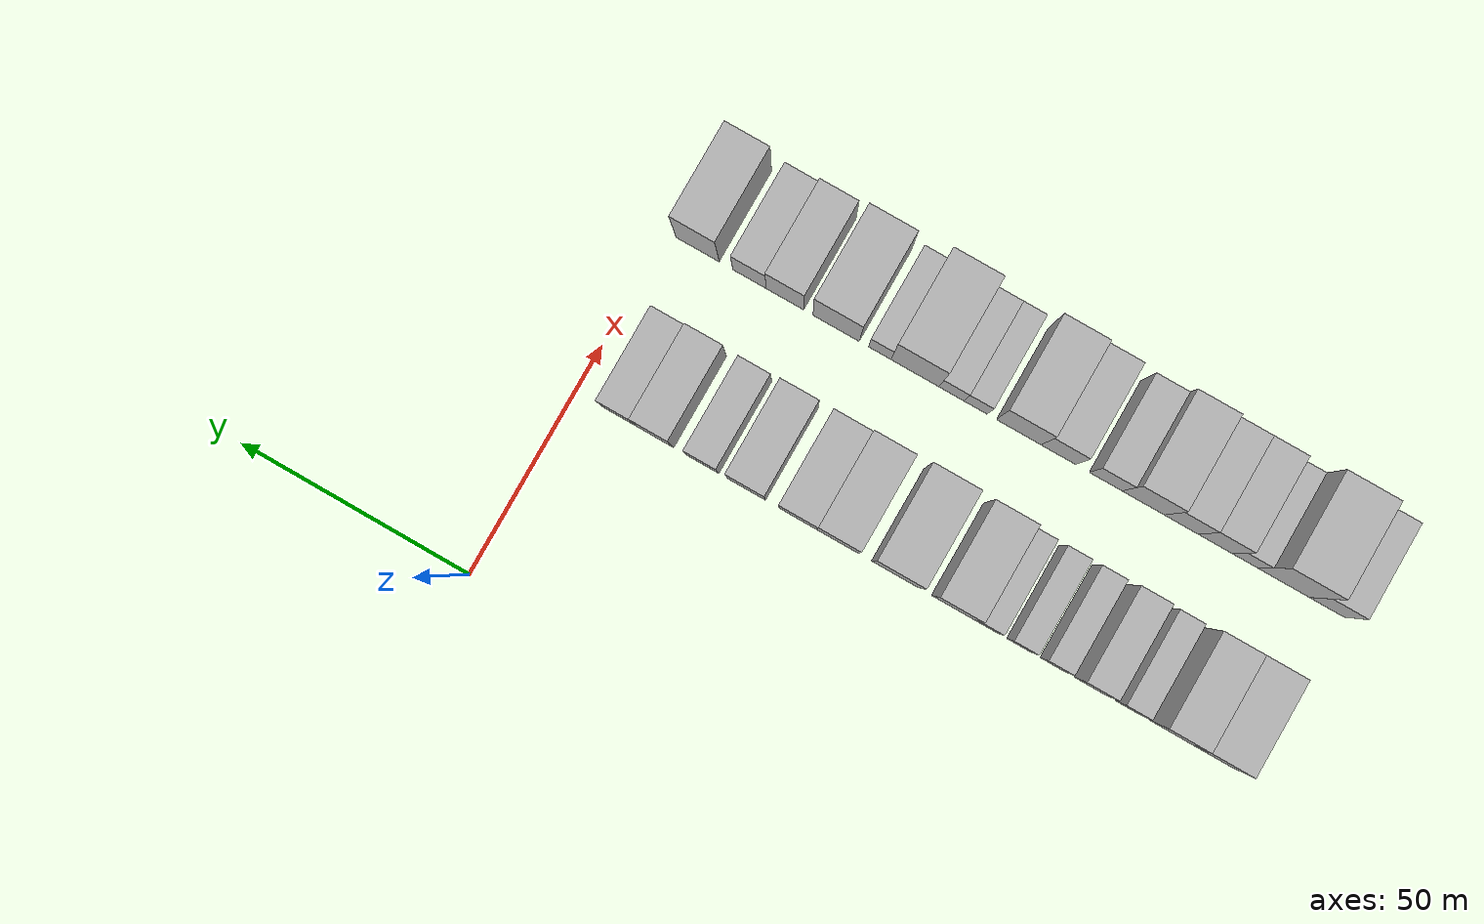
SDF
<sdf version="1.6">
 <world name="default">
  <model name="building_17">
   <static>1</static>
   <pose>50.0000 -137.6509 0 0.000000 0.000000 0.000000</pose>
   <link name="link">
    <pose>0 0 9.00 0 0 0</pose>
    <collision name="collision"><geometry><box><size>20.0000 8.8214 18.0000</size></box></geometry></collision>
    <visual name="visual">
     <cast_shadows>0</cast_shadows>
     <geometry><box><size>20.0000 8.8214 18.0000</size></box></geometry>
     <material>
      <script>
       <uri>model://HANNAS_wall/materials/scripts</uri>
       <uri>model://HANNAS_wall/materials/textures</uri>
       <name>vrc/HANNAS_wall</name>
      </script>
     </material>
    </visual>
   </link>
  </model>
  <model name="building_18">
   <static>1</static>
   <pose>50.0000 -128.8760 0 0.000000 0.000000 0.000000</pose>
   <link name="link">
    <pose>0 0 9.00 0 0 0</pose>
    <collision name="collision"><geometry><box><size>20.0000 8.7284 18.0000</size></box></geometry></collision>
    <visual name="visual">
     <cast_shadows>0</cast_shadows>
     <geometry><box><size>20.0000 8.7284 18.0000</size></box></geometry>
     <material>
      <script>
       <uri>model://HANNAS_wall/materials/scripts</uri>
       <uri>model://HANNAS_wall/materials/textures</uri>
       <name>vrc/HANNAS_wall</name>
      </script>
     </material>
    </visual>
   </link>
  </model>
  <model name="building_19">
   <static>1</static>
   <pose>50.0000 -119.8155 0 0.000000 0.000000 0.000000</pose>
   <link name="link">
    <pose>0 0 6.00 0 0 0</pose>
    <collision name="collision"><geometry><box><size>20.0000 5.3927 12.0000</size></box></geometry></collision>
    <visual name="visual">
     <cast_shadows>0</cast_shadows>
     <geometry><box><size>20.0000 5.3927 12.0000</size></box></geometry>
     <material>
      <script>
       <uri>model://HANNAS_wall/materials/scripts</uri>
       <uri>model://HANNAS_wall/materials/textures</uri>
       <name>vrc/HANNAS_wall</name>
      </script>
     </material>
    </visual>
   </link>
  </model>
  <model name="building_20">
   <static>1</static>
   <pose>50.0000 -111.7386 0 0.000000 0.000000 0.000000</pose>
   <link name="link">
    <pose>0 0 7.50 0 0 0</pose>
    <collision name="collision"><geometry><box><size>20.0000 6.7611 15.0000</size></box></geometry></collision>
    <visual name="visual">
     <cast_shadows>0</cast_shadows>
     <geometry><box><size>20.0000 6.7611 15.0000</size></box></geometry>
     <material>
      <script>
       <uri>model://HANNAS_wall/materials/scripts</uri>
       <uri>model://HANNAS_wall/materials/textures</uri>
       <name>vrc/HANNAS_wall</name>
      </script>
     </material>
    </visual>
   </link>
  </model>
  <model name="building_21">
   <static>1</static>
   <pose>50.0000 -103.6597 0 0.000000 0.000000 0.000000</pose>
   <link name="link">
    <pose>0 0 6.00 0 0 0</pose>
    <collision name="collision"><geometry><box><size>20.0000 5.3967 12.0000</size></box></geometry></collision>
    <visual name="visual">
     <cast_shadows>0</cast_shadows>
     <geometry><box><size>20.0000 5.3967 12.0000</size></box></geometry>
     <material>
      <script>
       <uri>model://HANNAS_wall/materials/scripts</uri>
       <uri>model://HANNAS_wall/materials/textures</uri>
       <name>vrc/HANNAS_wall</name>
      </script>
     </material>
    </visual>
   </link>
  </model>
  <model name="building_22">
   <static>1</static>
   <pose>50.0000 -96.3648 0 0.000000 0.000000 0.000000</pose>
   <link name="link">
    <pose>0 0 6.00 0 0 0</pose>
    <collision name="collision"><geometry><box><size>20.0000 5.1931 12.0000</size></box></geometry></collision>
    <visual name="visual">
     <cast_shadows>0</cast_shadows>
     <geometry><box><size>20.0000 5.1931 12.0000</size></box></geometry>
     <material>
      <script>
       <uri>model://HANNAS_wall/materials/scripts</uri>
       <uri>model://HANNAS_wall/materials/textures</uri>
       <name>vrc/HANNAS_wall</name>
      </script>
     </material>
    </visual>
   </link>
  </model>
  <model name="building_23">
   <static>1</static>
   <pose>50.0000 -89.1910 0 0.000000 0.000000 0.000000</pose>
   <link name="link">
    <pose>0 0 6.00 0 0 0</pose>
    <collision name="collision"><geometry><box><size>20.0000 5.1546 12.0000</size></box></geometry></collision>
    <visual name="visual">
     <cast_shadows>0</cast_shadows>
     <geometry><box><size>20.0000 5.1546 12.0000</size></box></geometry>
     <material>
      <script>
       <uri>model://HANNAS_wall/materials/scripts</uri>
       <uri>model://HANNAS_wall/materials/textures</uri>
       <name>vrc/HANNAS_wall</name>
      </script>
     </material>
    </visual>
   </link>
  </model>
  <model name="building_24">
   <static>1</static>
   <pose>50.0000 -82.0602 0 0.000000 0.000000 0.000000</pose>
   <link name="link">
    <pose>0 0 10.50 0 0 0</pose>
    <collision name="collision"><geometry><box><size>20.0000 9.1070 21.0000</size></box></geometry></collision>
    <visual name="visual">
     <cast_shadows>0</cast_shadows>
     <geometry><box><size>20.0000 9.1070 21.0000</size></box></geometry>
     <material>
      <script>
       <uri>model://HANNAS_wall/materials/scripts</uri>
       <uri>model://HANNAS_wall/materials/textures</uri>
       <name>vrc/HANNAS_wall</name>
      </script>
     </material>
    </visual>
   </link>
  </model>
  <model name="building_25">
   <static>1</static>
   <pose>50.0000 -69.5105 0 0.000000 0.000000 0.000000</pose>
   <link name="link">
    <pose>0 0 12.00 0 0 0</pose>
    <collision name="collision"><geometry><box><size>20.0000 9.9925 24.0000</size></box></geometry></collision>
    <visual name="visual">
     <cast_shadows>0</cast_shadows>
     <geometry><box><size>20.0000 9.9925 24.0000</size></box></geometry>
     <material>
      <script>
       <uri>model://HANNAS_wall/materials/scripts</uri>
       <uri>model://HANNAS_wall/materials/textures</uri>
       <name>vrc/HANNAS_wall</name>
      </script>
     </material>
    </visual>
   </link>
  </model>
  <model name="building_26">
   <static>1</static>
   <pose>50.0000 -57.0944 0 0.000000 0.000000 0.000000</pose>
   <link name="link">
    <pose>0 0 10.50 0 0 0</pose>
    <collision name="collision"><geometry><box><size>20.0000 8.8398 21.0000</size></box></geometry></collision>
    <visual name="visual">
     <cast_shadows>0</cast_shadows>
     <geometry><box><size>20.0000 8.8398 21.0000</size></box></geometry>
     <material>
      <script>
       <uri>model://HANNAS_wall/materials/scripts</uri>
       <uri>model://HANNAS_wall/materials/textures</uri>
       <name>vrc/HANNAS_wall</name>
      </script>
     </material>
    </visual>
   </link>
  </model>
  <model name="building_27">
   <static>1</static>
   <pose>50.0000 -48.5815 0 0.000000 0.000000 0.000000</pose>
   <link name="link">
    <pose>0 0 9.00 0 0 0</pose>
    <collision name="collision"><geometry><box><size>20.0000 8.1859 18.0000</size></box></geometry></collision>
    <visual name="visual">
     <cast_shadows>0</cast_shadows>
     <geometry><box><size>20.0000 8.1859 18.0000</size></box></geometry>
     <material>
      <script>
       <uri>model://HANNAS_wall/materials/scripts</uri>
       <uri>model://HANNAS_wall/materials/textures</uri>
       <name>vrc/HANNAS_wall</name>
      </script>
     </material>
    </visual>
   </link>
  </model>
  <model name="building_28">
   <static>1</static>
   <pose>50.0000 -37.4113 0 0.000000 0.000000 0.000000</pose>
   <link name="link">
    <pose>0 0 9.00 0 0 0</pose>
    <collision name="collision"><geometry><box><size>20.0000 8.1546 18.0000</size></box></geometry></collision>
    <visual name="visual">
     <cast_shadows>0</cast_shadows>
     <geometry><box><size>20.0000 8.1546 18.0000</size></box></geometry>
     <material>
      <script>
       <uri>model://HANNAS_wall/materials/scripts</uri>
       <uri>model://HANNAS_wall/materials/textures</uri>
       <name>vrc/HANNAS_wall</name>
      </script>
     </material>
    </visual>
   </link>
  </model>
  <model name="building_29">
   <static>1</static>
   <pose>50.0000 -27.9092 0 0.000000 0.000000 0.000000</pose>
   <link name="link">
    <pose>0 0 7.50 0 0 0</pose>
    <collision name="collision"><geometry><box><size>20.0000 6.8497 15.0000</size></box></geometry></collision>
    <visual name="visual">
     <cast_shadows>0</cast_shadows>
     <geometry><box><size>20.0000 6.8497 15.0000</size></box></geometry>
     <material>
      <script>
       <uri>model://HANNAS_wall/materials/scripts</uri>
       <uri>model://HANNAS_wall/materials/textures</uri>
       <name>vrc/HANNAS_wall</name>
      </script>
     </material>
    </visual>
   </link>
  </model>
  <model name="building_30">
   <static>1</static>
   <pose>50.0000 -17.4565 0 0.000000 0.000000 0.000000</pose>
   <link name="link">
    <pose>0 0 9.00 0 0 0</pose>
    <collision name="collision"><geometry><box><size>20.0000 8.0557 18.0000</size></box></geometry></collision>
    <visual name="visual">
     <cast_shadows>0</cast_shadows>
     <geometry><box><size>20.0000 8.0557 18.0000</size></box></geometry>
     <material>
      <script>
       <uri>model://HANNAS_wall/materials/scripts</uri>
       <uri>model://HANNAS_wall/materials/textures</uri>
       <name>vrc/HANNAS_wall</name>
      </script>
     </material>
    </visual>
   </link>
  </model>
  <model name="building_31">
   <static>1</static>
   <pose>50.0000 -9.7898 0 0.000000 0.000000 0.000000</pose>
   <link name="link">
    <pose>0 0 7.50 0 0 0</pose>
    <collision name="collision"><geometry><box><size>20.0000 7.2776 15.0000</size></box></geometry></collision>
    <visual name="visual">
     <cast_shadows>0</cast_shadows>
     <geometry><box><size>20.0000 7.2776 15.0000</size></box></geometry>
     <material>
      <script>
       <uri>model://HANNAS_wall/materials/scripts</uri>
       <uri>model://HANNAS_wall/materials/textures</uri>
       <name>vrc/HANNAS_wall</name>
      </script>
     </material>
    </visual>
   </link>
  </model>
  <model name="building_80">
   <static>1</static>
   <pose>85.0000 -143.1787 0 0.000000 0.000000 0.000000</pose>
   <link name="link">
    <pose>0 0 7.50 0 0 0</pose>
    <collision name="collision"><geometry><box><size>20.0000 7.4720 15.0000</size></box></geometry></collision>
    <visual name="visual">
     <cast_shadows>0</cast_shadows>
     <geometry><box><size>20.0000 7.4720 15.0000</size></box></geometry>
     <material>
      <script>
       <uri>model://HANNAS_wall/materials/scripts</uri>
       <uri>model://HANNAS_wall/materials/textures</uri>
       <name>vrc/HANNAS_wall</name>
      </script>
     </material>
    </visual>
   </link>
  </model>
  <model name="building_81">
   <static>1</static>
   <pose>85.0000 -133.8678 0 0.000000 0.000000 0.000000</pose>
   <link name="link">
    <pose>0 0 12.00 0 0 0</pose>
    <collision name="collision"><geometry><box><size>20.0000 11.1498 24.0000</size></box></geometry></collision>
    <visual name="visual">
     <cast_shadows>0</cast_shadows>
     <geometry><box><size>20.0000 11.1498 24.0000</size></box></geometry>
     <material>
      <script>
       <uri>model://HANNAS_wall/materials/scripts</uri>
       <uri>model://HANNAS_wall/materials/textures</uri>
       <name>vrc/HANNAS_wall</name>
      </script>
     </material>
    </visual>
   </link>
  </model>
  <model name="building_82">
   <static>1</static>
   <pose>85.0000 -125.5841 0 0.000000 0.000000 0.000000</pose>
   <link name="link">
    <pose>0 0 6.00 0 0 0</pose>
    <collision name="collision"><geometry><box><size>20.0000 5.4175 12.0000</size></box></geometry></collision>
    <visual name="visual">
     <cast_shadows>0</cast_shadows>
     <geometry><box><size>20.0000 5.4175 12.0000</size></box></geometry>
     <material>
      <script>
       <uri>model://HANNAS_wall/materials/scripts</uri>
       <uri>model://HANNAS_wall/materials/textures</uri>
       <name>vrc/HANNAS_wall</name>
      </script>
     </material>
    </visual>
   </link>
  </model>
  <model name="building_83">
   <static>1</static>
   <pose>85.0000 -119.1828 0 0.000000 0.000000 0.000000</pose>
   <link name="link">
    <pose>0 0 9.00 0 0 0</pose>
    <collision name="collision"><geometry><box><size>20.0000 7.3850 18.0000</size></box></geometry></collision>
    <visual name="visual">
     <cast_shadows>0</cast_shadows>
     <geometry><box><size>20.0000 7.3850 18.0000</size></box></geometry>
     <material>
      <script>
       <uri>model://HANNAS_wall/materials/scripts</uri>
       <uri>model://HANNAS_wall/materials/textures</uri>
       <name>vrc/HANNAS_wall</name>
      </script>
     </material>
    </visual>
   </link>
  </model>
  <model name="building_84">
   <static>1</static>
   <pose>85.0000 -111.8487 0 0.000000 0.000000 0.000000</pose>
   <link name="link">
    <pose>0 0 9.00 0 0 0</pose>
    <collision name="collision"><geometry><box><size>20.0000 7.2832 18.0000</size></box></geometry></collision>
    <visual name="visual">
     <cast_shadows>0</cast_shadows>
     <geometry><box><size>20.0000 7.2832 18.0000</size></box></geometry>
     <material>
      <script>
       <uri>model://HANNAS_wall/materials/scripts</uri>
       <uri>model://HANNAS_wall/materials/textures</uri>
       <name>vrc/HANNAS_wall</name>
      </script>
     </material>
    </visual>
   </link>
  </model>
  <model name="building_85">
   <static>1</static>
   <pose>85.0000 -103.6294 0 0.000000 0.000000 0.000000</pose>
   <link name="link">
    <pose>0 0 10.50 0 0 0</pose>
    <collision name="collision"><geometry><box><size>20.0000 9.1555 21.0000</size></box></geometry></collision>
    <visual name="visual">
     <cast_shadows>0</cast_shadows>
     <geometry><box><size>20.0000 9.1555 21.0000</size></box></geometry>
     <material>
      <script>
       <uri>model://HANNAS_wall/materials/scripts</uri>
       <uri>model://HANNAS_wall/materials/textures</uri>
       <name>vrc/HANNAS_wall</name>
      </script>
     </material>
    </visual>
   </link>
  </model>
  <model name="building_86">
   <static>1</static>
   <pose>85.0000 -95.5231 0 0.000000 0.000000 0.000000</pose>
   <link name="link">
    <pose>0 0 7.50 0 0 0</pose>
    <collision name="collision"><geometry><box><size>20.0000 7.0570 15.0000</size></box></geometry></collision>
    <visual name="visual">
     <cast_shadows>0</cast_shadows>
     <geometry><box><size>20.0000 7.0570 15.0000</size></box></geometry>
     <material>
      <script>
       <uri>model://HANNAS_wall/materials/scripts</uri>
       <uri>model://HANNAS_wall/materials/textures</uri>
       <name>vrc/HANNAS_wall</name>
      </script>
     </material>
    </visual>
   </link>
  </model>
  <model name="building_87">
   <static>1</static>
   <pose>85.0000 -85.2627 0 0.000000 0.000000 0.000000</pose>
   <link name="link">
    <pose>0 0 9.00 0 0 0</pose>
    <collision name="collision"><geometry><box><size>20.0000 7.4637 18.0000</size></box></geometry></collision>
    <visual name="visual">
     <cast_shadows>0</cast_shadows>
     <geometry><box><size>20.0000 7.4637 18.0000</size></box></geometry>
     <material>
      <script>
       <uri>model://HANNAS_wall/materials/scripts</uri>
       <uri>model://HANNAS_wall/materials/textures</uri>
       <name>vrc/HANNAS_wall</name>
      </script>
     </material>
    </visual>
   </link>
  </model>
  <model name="building_88">
   <static>1</static>
   <pose>85.0000 -76.6900 0 0.000000 0.000000 0.000000</pose>
   <link name="link">
    <pose>0 0 10.50 0 0 0</pose>
    <collision name="collision"><geometry><box><size>20.0000 9.6817 21.0000</size></box></geometry></collision>
    <visual name="visual">
     <cast_shadows>0</cast_shadows>
     <geometry><box><size>20.0000 9.6817 21.0000</size></box></geometry>
     <material>
      <script>
       <uri>model://HANNAS_wall/materials/scripts</uri>
       <uri>model://HANNAS_wall/materials/textures</uri>
       <name>vrc/HANNAS_wall</name>
      </script>
     </material>
    </visual>
   </link>
  </model>
  <model name="building_89">
   <static>1</static>
   <pose>85.0000 -67.3450 0 0.000000 0.000000 0.000000</pose>
   <link name="link">
    <pose>0 0 6.00 0 0 0</pose>
    <collision name="collision"><geometry><box><size>20.0000 5.0084 12.0000</size></box></geometry></collision>
    <visual name="visual">
     <cast_shadows>0</cast_shadows>
     <geometry><box><size>20.0000 5.0084 12.0000</size></box></geometry>
     <material>
      <script>
       <uri>model://HANNAS_wall/materials/scripts</uri>
       <uri>model://HANNAS_wall/materials/textures</uri>
       <name>vrc/HANNAS_wall</name>
      </script>
     </material>
    </visual>
   </link>
  </model>
  <model name="building_90">
   <static>1</static>
   <pose>85.0000 -62.0799 0 0.000000 0.000000 0.000000</pose>
   <link name="link">
    <pose>0 0 6.00 0 0 0</pose>
    <collision name="collision"><geometry><box><size>20.0000 5.5217 12.0000</size></box></geometry></collision>
    <visual name="visual">
     <cast_shadows>0</cast_shadows>
     <geometry><box><size>20.0000 5.5217 12.0000</size></box></geometry>
     <material>
      <script>
       <uri>model://HANNAS_wall/materials/scripts</uri>
       <uri>model://HANNAS_wall/materials/textures</uri>
       <name>vrc/HANNAS_wall</name>
      </script>
     </material>
    </visual>
   </link>
  </model>
  <model name="building_91">
   <static>1</static>
   <pose>85.0000 -54.0821 0 0.000000 0.000000 0.000000</pose>
   <link name="link">
    <pose>0 0 12.00 0 0 0</pose>
    <collision name="collision"><geometry><box><size>20.0000 10.4739 24.0000</size></box></geometry></collision>
    <visual name="visual">
     <cast_shadows>0</cast_shadows>
     <geometry><box><size>20.0000 10.4739 24.0000</size></box></geometry>
     <material>
      <script>
       <uri>model://HANNAS_wall/materials/scripts</uri>
       <uri>model://HANNAS_wall/materials/textures</uri>
       <name>vrc/HANNAS_wall</name>
      </script>
     </material>
    </visual>
   </link>
  </model>
  <model name="building_92">
   <static>1</static>
   <pose>85.0000 -46.3935 0 0.000000 0.000000 0.000000</pose>
   <link name="link">
    <pose>0 0 6.00 0 0 0</pose>
    <collision name="collision"><geometry><box><size>20.0000 4.9033 12.0000</size></box></geometry></collision>
    <visual name="visual">
     <cast_shadows>0</cast_shadows>
     <geometry><box><size>20.0000 4.9033 12.0000</size></box></geometry>
     <material>
      <script>
       <uri>model://HANNAS_wall/materials/scripts</uri>
       <uri>model://HANNAS_wall/materials/textures</uri>
       <name>vrc/HANNAS_wall</name>
      </script>
     </material>
    </visual>
   </link>
  </model>
  <model name="building_93">
   <static>1</static>
   <pose>85.0000 -36.8664 0 0.000000 0.000000 0.000000</pose>
   <link name="link">
    <pose>0 0 10.50 0 0 0</pose>
    <collision name="collision"><geometry><box><size>20.0000 10.1509 21.0000</size></box></geometry></collision>
    <visual name="visual">
     <cast_shadows>0</cast_shadows>
     <geometry><box><size>20.0000 10.1509 21.0000</size></box></geometry>
     <material>
      <script>
       <uri>model://HANNAS_wall/materials/scripts</uri>
       <uri>model://HANNAS_wall/materials/textures</uri>
       <name>vrc/HANNAS_wall</name>
      </script>
     </material>
    </visual>
   </link>
  </model>
  <model name="building_94">
   <static>1</static>
   <pose>85.0000 -25.6707 0 0.000000 0.000000 0.000000</pose>
   <link name="link">
    <pose>0 0 9.00 0 0 0</pose>
    <collision name="collision"><geometry><box><size>20.0000 8.2406 18.0000</size></box></geometry></collision>
    <visual name="visual">
     <cast_shadows>0</cast_shadows>
     <geometry><box><size>20.0000 8.2406 18.0000</size></box></geometry>
     <material>
      <script>
       <uri>model://HANNAS_wall/materials/scripts</uri>
       <uri>model://HANNAS_wall/materials/textures</uri>
       <name>vrc/HANNAS_wall</name>
      </script>
     </material>
    </visual>
   </link>
  </model>
  <model name="building_95">
   <static>1</static>
   <pose>85.0000 -17.8987 0 0.000000 0.000000 0.000000</pose>
   <link name="link">
    <pose>0 0 7.50 0 0 0</pose>
    <collision name="collision"><geometry><box><size>20.0000 7.3033 15.0000</size></box></geometry></collision>
    <visual name="visual">
     <cast_shadows>0</cast_shadows>
     <geometry><box><size>20.0000 7.3033 15.0000</size></box></geometry>
     <material>
      <script>
       <uri>model://HANNAS_wall/materials/scripts</uri>
       <uri>model://HANNAS_wall/materials/textures</uri>
       <name>vrc/HANNAS_wall</name>
      </script>
     </material>
    </visual>
   </link>
  </model>
  <model name="building_96">
   <static>1</static>
   <pose>85.0000 -6.5135 0 0.000000 0.000000 0.000000</pose>
   <link name="link">
    <pose>0 0 10.50 0 0 0</pose>
    <collision name="collision"><geometry><box><size>20.0000 9.4672 21.0000</size></box></geometry></collision>
    <visual name="visual">
     <cast_shadows>0</cast_shadows>
     <geometry><box><size>20.0000 9.4672 21.0000</size></box></geometry>
     <material>
      <script>
       <uri>model://HANNAS_wall/materials/scripts</uri>
       <uri>model://HANNAS_wall/materials/textures</uri>
       <name>vrc/HANNAS_wall</name>
      </script>
     </material>
    </visual>
   </link>
  </model>
 </world>
</sdf>
